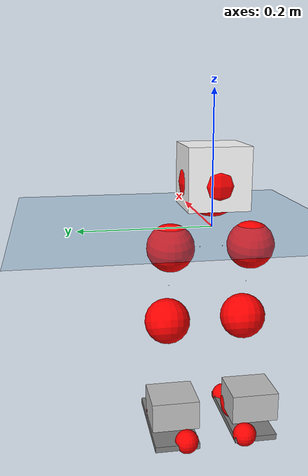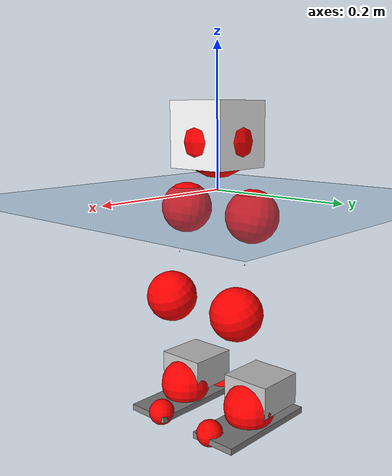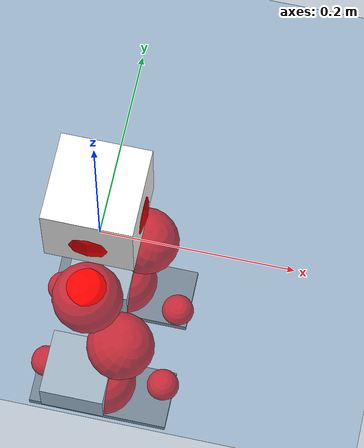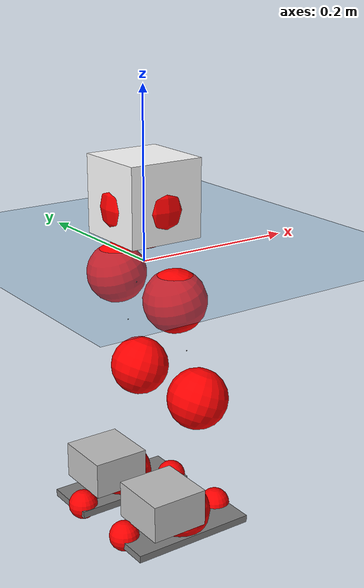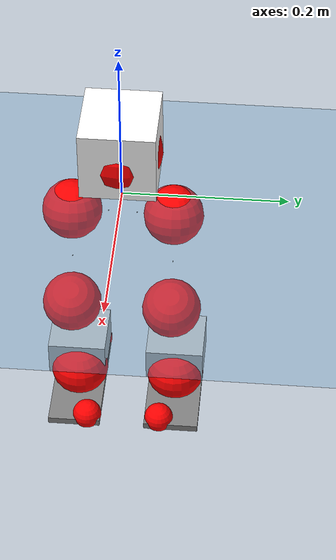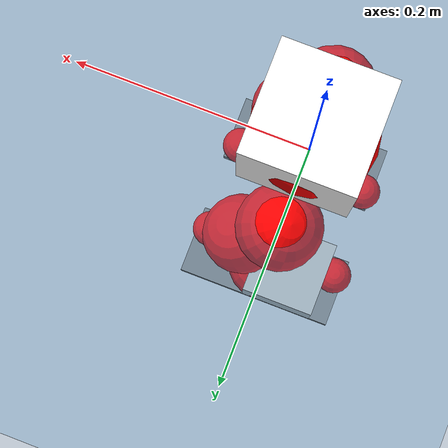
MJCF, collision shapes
<mujoco model="pi_12dof_release_v1">
  <compiler angle="radian" assetdir="assets" balanceinertia="true" inertiafromgeom="false"/>

  <option timestep="0.005" density="1.2" viscosity="2e-05"/>

  <size nkey="1"/>

  <visual>
    <quality shadowsize="8192"/>
    <map shadowclip="0.5"/>
  </visual>

  <default>
    <default class="/">
      <joint armature="0.01" damping="0.01" frictionloss="0.01"/>
      <geom contype="0" conaffinity="0" group="1" solref="-1000 -80"/>
      <site size="0.01 0.005 0.005" group="5"/>
      <general forcelimited="true" biastype="affine" gainprm="20" biasprm="0 -20 -0.5"/>
      <default class="foot">
        <geom size="0.0845 0.036 0.005" type="box" condim="6" group="4" priority="1" friction="0.9 0.2 0.2" solimp="0.015 1 0.005"/>
      </default>
      <default class="reward_collision_sphere">
        <geom group="5" rgba="1 0 0 1"/>
      </default>
    </default>
  </default>

  <asset>
    <texture type="skybox" colorspace="auto" name="//unnamed_texture_0" builtin="gradient" rgb1="0.95 0.95 0.95" rgb2="0.95 0.95 0.95" width="100" height="600"/>
    <texture type="2d" colorspace="auto" name="texplane" builtin="checker" rgb1="0.345 0.575 0.748" rgb2="0.345 0.575 0.748" markrgb="1 1 1" width="512" height="512"/>
    <material name="MatPlane" class="/" texture="texplane" texuniform="true" texrepeat="2 2" specular="0.9"/>
    <mesh name="baselink_1" class="/" file="baselink_1.STL"/>
    <mesh name="r_hip_pitch_link" class="/" file="r_hip_pitch_link.STL"/>
    <mesh name="r_hip_roll_link" class="/" file="r_hip_roll_link.STL"/>
    <mesh name="r_thigh_link" class="/" file="r_thigh_link.STL"/>
    <mesh name="r_calf_link" class="/" file="r_calf_link.STL"/>
    <mesh name="r_ankle_pitch_link" class="/" file="r_ankle_pitch_link.STL"/>
    <mesh name="r_ankle_roll_link" class="/" file="r_ankle_roll_link.STL"/>
    <mesh name="l_hip_pitch_link" class="/" file="l_hip_pitch_link.STL"/>
    <mesh name="l_hip_roll_link" class="/" file="l_hip_roll_link.STL"/>
    <mesh name="l_thigh_link" class="/" file="l_thigh_link.STL"/>
    <mesh name="l_calf_link" class="/" file="l_calf_link.STL"/>
    <mesh name="l_ankle_pitch_link" class="/" file="l_ankle_pitch_link.STL"/>
    <mesh name="l_ankle_roll_link" class="/" file="l_ankle_roll_link.STL"/>
  </asset>

  <worldbody>
    <geom name="floor" class="/" size="100 100 0.125" type="plane" group="0" material="MatPlane"/>
    <light name="toplight_shadow" class="/" pos="0 0 5" dir="0.0990148 0.0990148 -0.990148" type="directional" ambient="0.04 0.04 0.04" diffuse="0.55 0.55 0.55" specular="0.12 0.12 0.12"/>
    <light name="toplight_fill" class="/" pos="0 0 5" dir="0.0990148 0.0990148 -0.990148" type="directional" castshadow="false" ambient="0.04 0.04 0.04" diffuse="0.3 0.3 0.3" specular="0.08 0.08 0.08"/>
    <body name="trunk" pos="6.20316e-05 3.13341e-05 0.000789979" quat="1 2.76136e-05 3.22596e-05 5.63472e-06">
      <inertial pos="0.00199092 -0.000484598 0.0377138" quat="0.695285 0.00973547 0.00954279 0.718605" mass="1.66265" diaginertia="0.0096051 0.00287961 0.00318279"/>
      <joint name="//unnamed_joint_0" type="free"/>
      <geom name="//unnamed_geom_1" class="/" type="mesh" density="0" rgba="1 1 1 1" mesh="baselink_1"/>
      <geom name="//unnamed_geom_2" class="/" size="0.0455897 0.0455897 0.0455897" pos="0 0 0.0756494" type="box" rgba="1 1 1 1"/>
      <geom name="//unnamed_geom_3" class="reward_collision_sphere" size="0.0501486" pos="0 0 0.0661932"/>
      <site name="imu" class="/" pos="-0.000267656 0.00434421 -0.00109017" size="0.00911794"/>
      <camera name="track" class="/" pos="0 -1.59008 0" quat="0.707107 0.707107 0 0" mode="trackcom"/>
      <camera name="ego_camera" class="/" pos="0.0746042 0 0.170211" quat="-0.5 -0.5 0.5 0.5"/>
      <body name="r_hip_pitch_link" pos="-0.000442458 -0.0168827 -0.0307139" quat="0.992209 -6.88183e-05 -0.124584 -5.75572e-05">
        <inertial pos="0.00130456 -0.0448264 0.000775901" quat="-0.0197908 0.705965 -0.0294924 0.707356" mass="0.278264" diaginertia="0.000105399 3.13757e-05 6.19121e-05"/>
        <joint name="r_hip_pitch_joint" class="/" pos="0 0 0" axis="0.0029059 -0.999971 -0.00702664" range="-1.75033 1.26741" armature="0.00952668" damping="0.0156639" frictionloss="0.00942014"/>
        <geom name="//unnamed_geom_4" class="/" type="mesh" density="0" rgba="0.75294 0.75294 0.75294 1" mesh="r_hip_pitch_link"/>
        <geom name="//unnamed_geom_5" class="/" size="0.000455897 0.000455897 0.000455897" type="box" rgba="0.75294 0.75294 0.75294 1"/>
        <body name="r_hip_roll_link" pos="0.000157835 -0.0440209 -0.000595311" quat="1 1.18537e-05 1.27157e-05 3.82678e-06">
          <inertial pos="-0.00120175 0.000203607 -0.0572665" quat="0.705468 -0.079629 -0.0833909 0.6993" mass="0.296012" diaginertia="0.000326878 8.77143e-05 9.61761e-05"/>
          <joint name="r_hip_roll_joint" class="/" pos="0 0 0" axis="-0.999997 0.000960706 0.00222434" range="-0.120685 0.500233" armature="0.00894284" damping="0.00254765" frictionloss="0.00871039"/>
          <geom name="//unnamed_geom_6" class="/" type="mesh" density="0" rgba="0.75294 0.75294 0.75294 1" mesh="r_hip_roll_link"/>
          <geom name="//unnamed_geom_7" class="/" size="0.000455897 0.000455897 0.000455897" type="box" rgba="0.75294 0.75294 0.75294 1"/>
          <geom name="//unnamed_geom_8" class="reward_collision_sphere" size="0.0364717"/>
          <body name="r_thigh_link" pos="8.18799e-05 5.55011e-05 -0.0654047" quat="1 -3.25877e-06 8.06671e-05 -3.16527e-05">
            <inertial pos="0.000204558 0.000749871 -0.0449598" quat="0.737291 0.675575 -0.00013642 -0.000180398" mass="0.0863504" diaginertia="0.000121794 3.00786e-05 4.40059e-05"/>
            <joint name="r_thigh_joint" class="/" pos="0 0 0" axis="-0.000575242 -0.000908211 -0.999999" range="-0.300553 0.607391" armature="0.00896096" damping="0.00275589" frictionloss="0.00921037"/>
            <geom name="//unnamed_geom_9" class="/" type="mesh" density="0" rgba="0.75294 0.75294 0.75294 1" mesh="r_thigh_link"/>
            <geom name="//unnamed_geom_10" class="/" size="0.000455897 0.000455897 0.000455897" type="box" rgba="0.75294 0.75294 0.75294 1"/>
            <body name="r_calf_link" pos="-0.000764163 -0.00100475 -0.0658134" quat="0.947673 6.02659e-05 0.319244 0.000126915">
              <inertial pos="-5.21872e-05 -0.00021089 -0.0665894" quat="0.999984 -0.00313179 4.10079e-05 0.00481439" mass="0.61774" diaginertia="0.00343924 0.00112108 0.000132052"/>
              <joint name="r_calf_joint" class="/" pos="0 0 0" axis="-0.000879475 -1 -0.000378211" range="-1.64079 0.64802" armature="0.00918192" damping="0.0082206" frictionloss="0.00899018"/>
              <geom name="//unnamed_geom_11" class="/" type="mesh" density="0" rgba="0.75294 0.75294 0.75294 1" mesh="r_calf_link"/>
              <geom name="//unnamed_geom_12" class="/" size="0.000455897 0.000455897 0.000455897" type="box" rgba="0.75294 0.75294 0.75294 1"/>
              <geom name="//unnamed_geom_13" class="reward_collision_sphere" size="0.0364717"/>
              <body name="r_ankle_pitch_link" pos="0.00145154 -0.000316195 -0.132556" quat="0.980065 7.67504e-07 -0.198677 -5.88922e-06">
                <inertial pos="0.00481447 0.00248159 -0.000324242" quat="0.00249347 0.707187 -0.00204182 0.70702" mass="0.136135" diaginertia="0.000302018 7.17082e-05 9.21735e-05"/>
                <joint name="r_ankle_pitch_joint" class="/" pos="0 0 0" axis="0.00367457 -0.999993 -0.000491759" range="-1.2807 0.489076" armature="0.00916961" damping="0.00961353" frictionloss="0.009007"/>
                <geom name="//unnamed_geom_14" class="/" type="mesh" density="0" rgba="0.75294 0.75294 0.75294 1" mesh="r_ankle_pitch_link"/>
                <geom name="//unnamed_geom_15" class="/" size="0.0355599 0.0364717 0.0227948" type="box" rgba="0.75294 0.75294 0.75294 1"/>
                <body name="r_ankle_roll_link" pos="0.0769099 0.00255926 -0.000740796" quat="1 -0.000100518 -1.35078e-05 9.30032e-05">
                  <inertial pos="-0.0234163 -0.000369932 -0.0131076" quat="0.558999 0.430584 0.434272 0.559934" mass="0.387182" diaginertia="0.00108804 0.0003271 0.00021378"/>
                  <joint name="r_ankle_roll_joint" class="/" pos="0 0 0" axis="-1 -0.000370341 0.000423325" stiffness="0.000659429" range="-0.150507 0.14401" armature="0.00910621" damping="0.00567521" frictionloss="0.00951456"/>
                  <geom name="//unnamed_geom_16" class="/" type="mesh" density="0" rgba="0.75294 0.75294 0.75294 1" mesh="r_ankle_roll_link"/>
                  <geom name="//unnamed_geom_17" class="/" type="mesh" rgba="0.75294 0.75294 0.75294 1" mesh="r_ankle_roll_link"/>
                  <geom name="right_foot" class="foot" size="0.0780023 0.0327426 0.00444368" pos="-0.0507308 0 -0.0416072"/>
                  <geom name="//unnamed_geom_19" class="reward_collision_sphere" size="0.0364717" pos="-0.0497361 0 -0.0189124"/>
                  <geom name="//unnamed_geom_20" class="reward_collision_sphere" size="0.0182359" pos="0.0149208 0.0159008 -0.0378247"/>
                  <geom name="//unnamed_geom_21" class="reward_collision_sphere" size="0.0182359" pos="-0.119367 0.0159008 -0.0378247"/>
                  <site name="right_foot" class="foot" pos="-0.0507308 0 -0.0416072" size="0.00911794"/>
                </body>
              </body>
            </body>
          </body>
        </body>
      </body>
      <body name="l_hip_pitch_link" pos="0.000325067 0.0179016 -0.0310555" quat="0.992189 0.000158567 -0.124742 -7.99347e-05">
        <inertial pos="0.00157383 0.0428729 0.0004296" quat="-0.0359471 0.70233 0.027163 0.710424" mass="0.291544" diaginertia="0.000125034 3.30335e-05 7.6735e-05"/>
        <joint name="l_hip_pitch_joint" class="/" pos="0 0 0" axis="-0.000996996 0.999999 0.000384074" range="-1.25617 1.74954" armature="0.00871867" damping="0.0076735" frictionloss="0.00926234"/>
        <geom name="//unnamed_geom_22" class="/" type="mesh" density="0" rgba="0.75294 0.75294 0.75294 1" mesh="l_hip_pitch_link"/>
        <geom name="//unnamed_geom_23" class="/" size="0.000455897 0.000455897 0.000455897" type="box" rgba="0.75294 0.75294 0.75294 1"/>
        <body name="l_hip_roll_link" pos="0.000490577 0.0444757 -0.000138829" quat="1 3.91381e-05 0.000208966 0.000214763">
          <inertial pos="-0.00178104 0.000731232 -0.0581885" quat="0.69969 -0.076247 -0.0787784 0.705984" mass="0.297315" diaginertia="0.000323974 8.95019e-05 9.66631e-05"/>
          <joint name="l_hip_roll_joint" class="/" pos="0 0 0" axis="-0.999996 0.00118261 -0.00271116" range="-0.48082 0.107948" armature="0.00932262" damping="0.00467816" frictionloss="0.0090643"/>
          <geom name="//unnamed_geom_24" class="/" type="mesh" density="0" rgba="0.75294 0.75294 0.75294 1" mesh="l_hip_roll_link"/>
          <geom name="//unnamed_geom_25" class="/" size="0.000455897 0.000455897 0.000455897" type="box" rgba="0.75294 0.75294 0.75294 1"/>
          <geom name="//unnamed_geom_26" class="reward_collision_sphere" size="0.0364717"/>
          <body name="l_thigh_link" pos="-0.000823457 -7.63405e-05 -0.0656749" quat="1 -7.42967e-05 -3.8137e-05 0.000115397">
            <inertial pos="3.78878e-05 -0.00142825 -0.0444421" quat="0.675355 0.737493 8.45844e-05 7.59712e-05" mass="0.0867345" diaginertia="0.000123318 3.05861e-05 4.50993e-05"/>
            <joint name="l_thigh_joint" class="/" pos="0 0 0" axis="0.00171565 0.000696116 -0.999998" range="-0.59323 0.300861" armature="0.009222" damping="0.000453457" frictionloss="0.00947529"/>
            <geom name="//unnamed_geom_27" class="/" type="mesh" density="0" rgba="0.75294 0.75294 0.75294 1" mesh="l_thigh_link"/>
            <geom name="//unnamed_geom_28" class="/" size="0.000455897 0.000455897 0.000455897" type="box" rgba="0.75294 0.75294 0.75294 1"/>
            <body name="l_calf_link" pos="-0.000616707 -0.000435664 -0.0669064" quat="0.947646 -4.1125e-06 0.319324 -6.34581e-05">
              <inertial pos="0.000650313 0.0016706 -0.0655242" quat="0.999961 0.000765542 -0.00135849 0.00871188" mass="0.62098" diaginertia="0.00342778 0.00113449 0.000133316"/>
              <joint name="l_calf_joint" class="/" pos="0 0 0" axis="0.0010427 0.999999 -0.000822788" range="-0.640366 1.66695" armature="0.00905192" damping="0.0092844" frictionloss="0.00953139"/>
              <geom name="//unnamed_geom_29" class="/" type="mesh" density="0" rgba="0.75294 0.75294 0.75294 1" mesh="l_calf_link"/>
              <geom name="//unnamed_geom_30" class="/" size="0.000455897 0.000455897 0.000455897" type="box" rgba="0.75294 0.75294 0.75294 1"/>
              <geom name="//unnamed_geom_31" class="reward_collision_sphere" size="0.0364717"/>
              <body name="l_ankle_pitch_link" pos="0.000776249 0.00151506 -0.133631" quat="0.980083 -0.000125101 -0.198586 -5.41368e-05">
                <inertial pos="0.0048589 0.000335301 -0.00092593" quat="-0.00404179 0.705755 0.00169847 0.708443" mass="0.131806" diaginertia="0.00029685 6.94593e-05 8.95652e-05"/>
                <joint name="l_ankle_pitch_joint" class="/" pos="0 0 0" axis="0.00209972 0.999998 7.68189e-05" stiffness="0.000183867" range="-0.504686 1.30654" armature="0.00918467" damping="0.00295713" frictionloss="0.00889866"/>
                <geom name="//unnamed_geom_32" class="/" type="mesh" density="0" rgba="0.75294 0.75294 0.75294 1" mesh="l_ankle_pitch_link"/>
                <geom name="//unnamed_geom_33" class="/" size="0.0355599 0.0364717 0.0227948" type="box" rgba="0.75294 0.75294 0.75294 1"/>
                <body name="l_ankle_roll_link" pos="0.0750023 0.000571623 -0.000100176" quat="1 -0.000103625 0.000250997 -0.000142195">
                  <inertial pos="-0.0243851 -6.87724e-05 -0.013603" quat="0.561316 0.432153 0.432287 0.55794" mass="0.396263" diaginertia="0.00111946 0.000330025 0.000219153"/>
                  <joint name="l_ankle_roll_joint" class="/" pos="0 0 0" axis="-0.999983 0.000995877 -0.00573546" stiffness="0.000111591" range="-0.14968 0.129584" armature="0.00918012" damping="0.008762" frictionloss="0.0086688"/>
                  <geom name="//unnamed_geom_34" class="/" type="mesh" density="0" rgba="0.75294 0.75294 0.75294 1" mesh="l_ankle_roll_link"/>
                  <geom name="//unnamed_geom_35" class="/" type="mesh" rgba="0.75294 0.75294 0.75294 1" mesh="l_ankle_roll_link"/>
                  <geom name="left_foot" class="foot" size="0.0789017 0.0342763 0.00450634" pos="-0.0507308 0 -0.0416072"/>
                  <geom name="//unnamed_geom_37" class="reward_collision_sphere" size="0.0364717" pos="-0.0497361 0 -0.0189124"/>
                  <geom name="//unnamed_geom_38" class="reward_collision_sphere" size="0.0182359" pos="0.0149208 -0.0159008 -0.0378247"/>
                  <geom name="//unnamed_geom_39" class="reward_collision_sphere" size="0.0182359" pos="-0.119367 -0.0159008 -0.0378247"/>
                  <site name="left_foot" class="foot" pos="-0.0507308 0 -0.0416072" size="0.00911794"/>
                </body>
              </body>
            </body>
          </body>
        </body>
      </body>
    </body>
  </worldbody>

  <contact>
    <pair class="/" geom1="floor" geom2="right_foot" name="//unnamed_contact_1"/>
    <pair class="/" geom1="floor" geom2="left_foot" name="//unnamed_contact_0"/>
  </contact>

  <actuator>
    <general name="r_hip_pitch_joint" class="/" joint="r_hip_pitch_joint" forcerange="-19.7413 19.7413" gainprm="18.4585" biasprm="0 -18.4585 -0.455584"/>
    <general name="r_hip_roll_joint" class="/" joint="r_hip_roll_joint" forcerange="-19.2423 19.2423" gainprm="18.4585" biasprm="0 -18.4585 -0.455584"/>
    <general name="r_thigh_joint" class="/" joint="r_thigh_joint" forcerange="-19.8326 19.8326" gainprm="18.4585" biasprm="0 -18.4585 -0.455584"/>
    <general name="r_calf_joint" class="/" joint="r_calf_joint" forcerange="-19.1426 19.1426" gainprm="18.4585" biasprm="0 -18.4585 -0.455584"/>
    <general name="r_ankle_pitch_joint" class="/" joint="r_ankle_pitch_joint" forcerange="-18.4671 18.4671" gainprm="18.4585" biasprm="0 -18.4585 -0.455584"/>
    <general name="r_ankle_roll_joint" class="/" joint="r_ankle_roll_joint" forcerange="-19.2141 19.2141" gainprm="18.4585" biasprm="0 -18.4585 -0.455584"/>
    <general name="l_hip_pitch_joint" class="/" joint="l_hip_pitch_joint" forcerange="-19.7867 19.7867" gainprm="18.4585" biasprm="0 -18.4585 -0.455584"/>
    <general name="l_hip_roll_joint" class="/" joint="l_hip_roll_joint" forcerange="-18.4937 18.4937" gainprm="18.4585" biasprm="0 -18.4585 -0.455584"/>
    <general name="l_thigh_joint" class="/" joint="l_thigh_joint" forcerange="-19.4301 19.4301" gainprm="18.4585" biasprm="0 -18.4585 -0.455584"/>
    <general name="l_calf_joint" class="/" joint="l_calf_joint" forcerange="-18.9821 18.9821" gainprm="18.4585" biasprm="0 -18.4585 -0.455584"/>
    <general name="l_ankle_pitch_joint" class="/" joint="l_ankle_pitch_joint" forcerange="-19.1335 19.1335" gainprm="18.4585" biasprm="0 -18.4585 -0.455584"/>
    <general name="l_ankle_roll_joint" class="/" joint="l_ankle_roll_joint" forcerange="-19.6168 19.6168" gainprm="18.4585" biasprm="0 -18.4585 -0.455584"/>
  </actuator>

  <sensor>
    <gyro site="imu" name="imu_angular_velocity"/>
    <velocimeter site="imu" name="imu_linear_velocity"/>
    <framelinvel objtype="site" objname="left_foot" name="left_foot_global_linear_velocity"/>
    <framelinvel objtype="site" objname="right_foot" name="right_foot_global_linear_velocity"/>
  </sensor>

  <keyframe>
    <key name="home" qpos="0 0 0.291 1 0 0 0 0.4 0 0 -0.8 0.4 0 -0.4 0 0 0.8 -0.4 0"/>
  </keyframe>
</mujoco>
